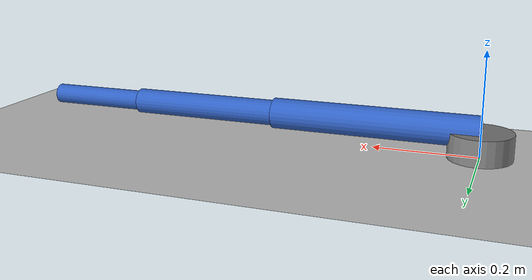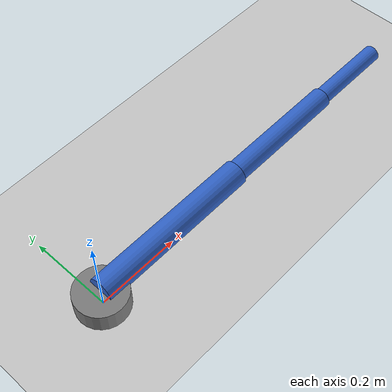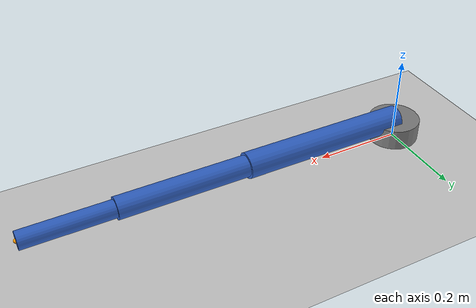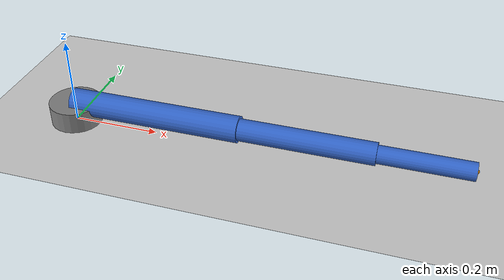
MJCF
<mujoco model="rrr_wall">
  <option gravity="0 0 -9.81" integrator="implicit"/>
  <compiler angle="radian"/>

  <worldbody>
    <light diffuse=".6 .6 .6" pos="0 0 3" dir="0 0 -1"/>
    <geom name="floor" type="plane" size="2 2 0.1" pos="0 0 0" rgba="0.8 0.8 0.8 1"/>

    <body name="base_link" pos="0 0 0">
      <inertial pos="0 0 0.025" mass="1.0" diaginertia="0.001 0.001 0.001"/>
      <geom type="cylinder" size="0.06 0.025" pos="0 0 0.025" rgba="0.5 0.5 0.5 1"/>
      <body name="link1" pos="0 0 0.05">
        <joint name="joint1" type="hinge" axis="0 1 0" damping="0.1" range="-3.14159 3.14159"/>
        <inertial pos="0.2 0 0" mass="2.0" diaginertia="0.001 0.028 0.028"/>
        <geom type="cylinder" size="0.03 0.2" pos="0.2 0 0" euler="0 1.5708 0" rgba="0.2 0.4 0.8 1"/>
        <body name="link2" pos="0.4 0 0">
          <joint name="joint2" type="hinge" axis="0 0 1" damping="0.1" range="-3.14159 3.14159"/>
          <inertial pos="0.15 0 0" mass="1.5" diaginertia="0.001 0.012 0.012"/>
          <geom type="cylinder" size="0.025 0.15" pos="0.15 0 0" euler="0 1.5708 0" rgba="0.2 0.4 0.8 1"/>
          <body name="link3" pos="0.3 0 0">
            <joint name="joint3" type="hinge" axis="0 0 1" damping="0.1" range="-3.14159 3.14159"/>
            <inertial pos="0.1 0 0" mass="1.0" diaginertia="0.002 0.030 0.030"/>
            <geom type="cylinder" size="0.02 0.1" pos="0.1 0 0" euler="0 1.5708 0" rgba="0.2 0.4 0.8 1"/>
            <body name="tip" pos="0.2 0 0">
              <geom type="sphere" size="0.005" rgba="1 0.6 0 1"/>
            </body>
          </body>
        </body>
      </body>
    </body>

    <!-- WALL REMOVED for diagnostic — isolate whether arm moves without the wall. -->

  </worldbody>
</mujoco>
